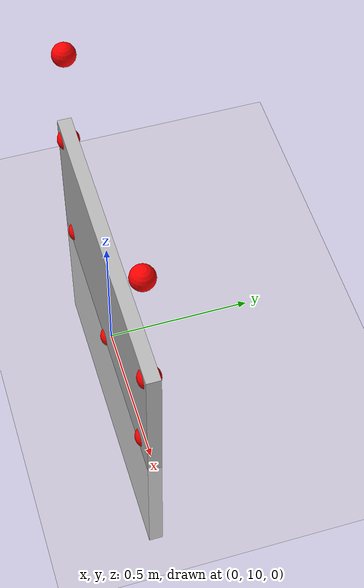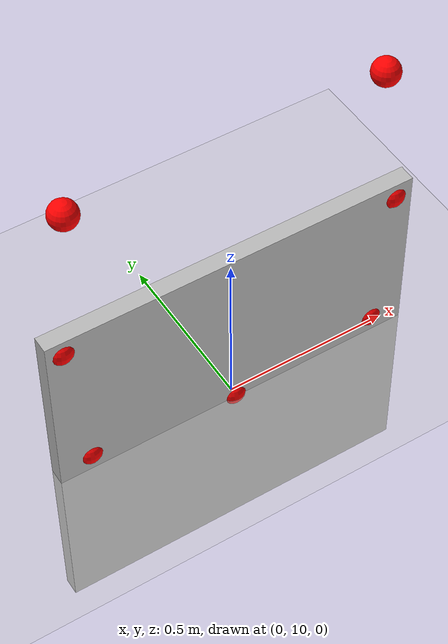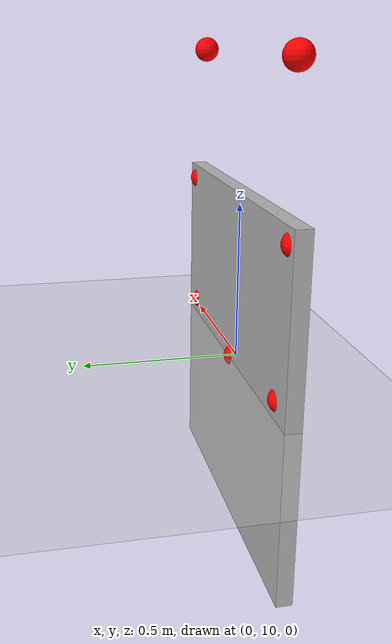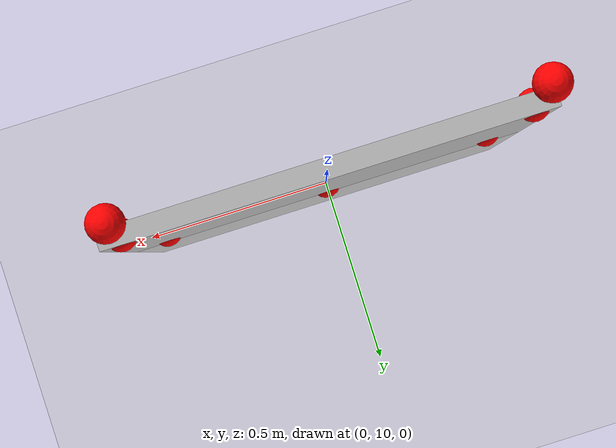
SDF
<?xml version="1.0"?>
<sdf version="1.4">
  <world name="animated_box_world">

    <!-- Ground Plane -->
    <include>
      <uri>model://ground_plane</uri>
    </include>

    <include>
      <uri>model://sun</uri>
    </include>

    <model name="Platform">
			<pose>0 10.0 0 0 0 0</pose>
				<link name = "body">
					<collision name = "collision">
						<geometry>
				      <box>
				        <size>1.1 0.05 1.1</size>
				      </box>
				    </geometry>
					</collision>

					<visual name = "base">
						<geometry>
				      <box>
				        <size>1.1 0.05 1.1</size>
				      </box>
				    </geometry>
				  </visual>

					<visual name="beacon_1">
				    <pose>-0.45 0 .05 0 0 0</pose>
				    <geometry>
				      <sphere>
				        <radius>0.04</radius>
				      </sphere>
				    </geometry>
				    <material>
				      <ambient>1 0 0 1</ambient>
				      <diffuse>1 0 0 1</diffuse>
				      <specular>0.1 0.1 0.1 1</specular>
				      <emissive>0 0 0 0</emissive>
				    </material>
				  </visual>

				  <visual name="beacon_2">
				    <pose>0 0 0 0 0 0</pose>
				    <geometry>
				      <sphere>
				        <radius>0.04</radius>
				      </sphere>
				    </geometry>
				    <material>
				      <ambient>1 0 0 1</ambient>
				      <diffuse>1 0 0 1</diffuse>
				      <specular>0.1 0.1 0.1 1</specular>
				      <emissive>0 0 0 0</emissive>
				    </material>
				  </visual>

				  <visual name="beacon_3">
				    <pose>0.45 0 .05 0 0 0</pose>
				    <geometry>
				      <sphere>
				        <radius>0.04</radius>
				      </sphere>
				    </geometry>
				    <material>
				      <ambient>1 0 0 1</ambient>
				      <diffuse>1 0 0 1</diffuse>
				      <specular>0.1 0.1 0.1 1</specular>
				      <emissive>0 0 0 0</emissive>
				    </material>
				  </visual>

				  <visual name="beacon_4">
				    <pose>0.5 0 0.5 0 0 0</pose>
				    <geometry>
				      <sphere>
				        <radius>0.04</radius>
				      </sphere>
				    </geometry>
				    <material>
				      <ambient>1 0 0 1</ambient>
				      <diffuse>1 0 0 1</diffuse>
				      <specular>0.1 0.1 0.1 1</specular>
				      <emissive>0 0 0 0</emissive>
				    </material>
				  </visual>

				  <visual name="beacon_5">
				    <pose>-0.5 0 0.5 0 0 0</pose>
				    <geometry>
				      <sphere>
				        <radius>0.04</radius>
				      </sphere>
				    </geometry>
				    <material>
				      <ambient>1 0 0 1</ambient>
				      <diffuse>1 0 0 1</diffuse>
				      <specular>0.1 0.1 0.1 1</specular>
				      <emissive>0 0 0 0</emissive>
				    </material>
				  </visual>

				  <visual name="beacon_6">
				    <pose>0.45 0 .95 0 0 0</pose>
				    <geometry>
				      <sphere>
				        <radius>0.04</radius>
				      </sphere>
				    </geometry>
				    <material>
				      <ambient>1 0 0 1</ambient>
				      <diffuse>1 0 0 1</diffuse>
				      <specular>0.1 0.1 0.1 1</specular>
				      <emissive>0 0 0 0</emissive>
				    </material>
				  </visual>

				  <visual name="beacon_7">
				    <pose>-0.45 0 .95 0 0 0</pose>
				    <geometry>
				      <sphere>
				        <radius>0.04</radius>
				      </sphere>
				    </geometry>
				    <material>
				      <ambient>1 0 0 1</ambient>
				      <diffuse>1 0 0 1</diffuse>
				      <specular>0.1 0.1 0.1 1</specular>
				      <emissive>0 0 0 0</emissive>
				    </material>
				  </visual>
				</link>

			<plugin name="push_animate" filename="libanimated_box.so"/>
    </model>
  </world>
</sdf>
